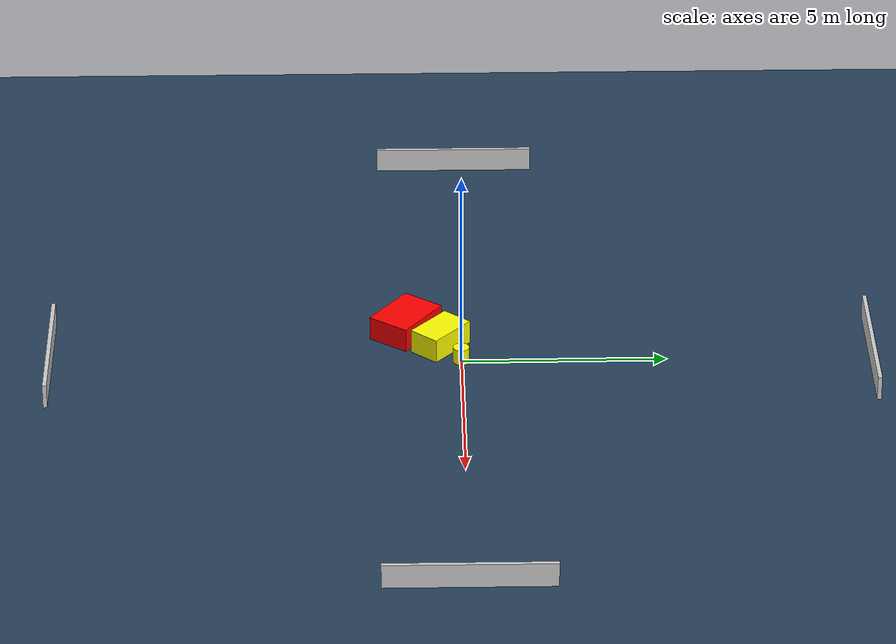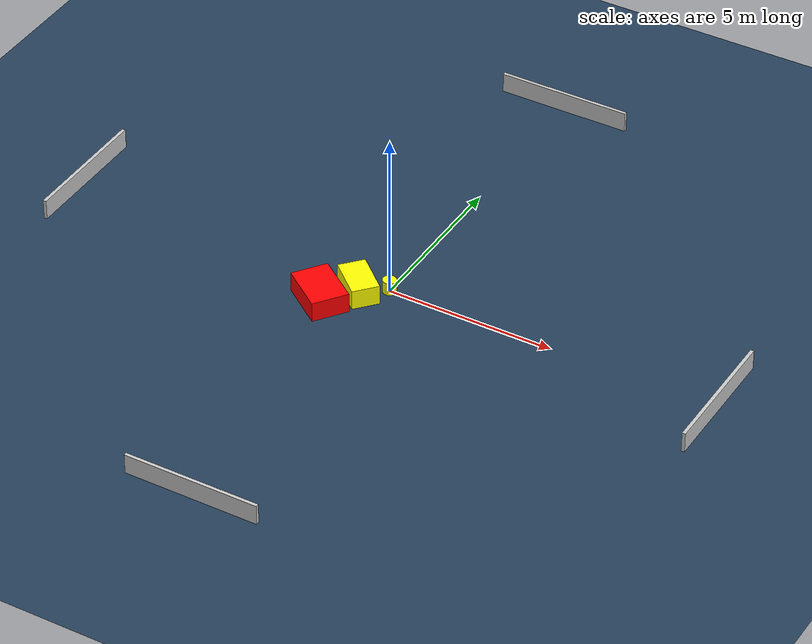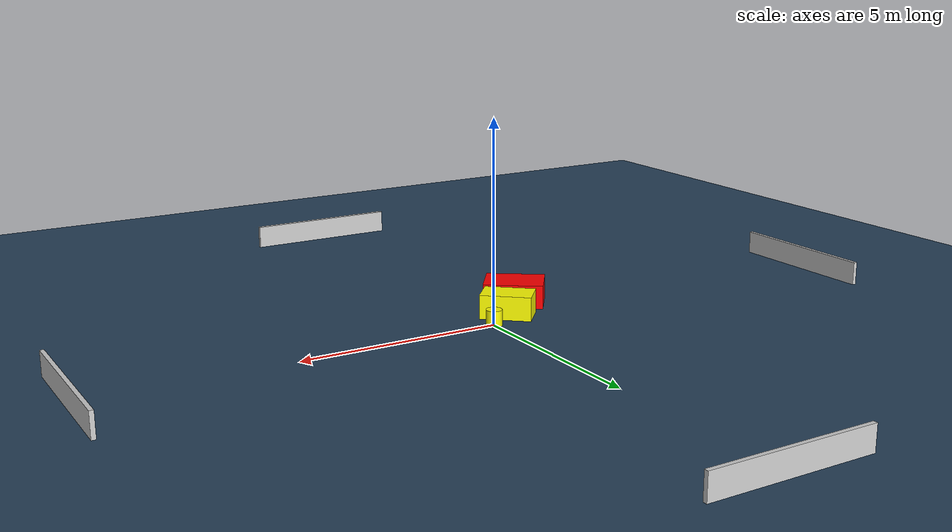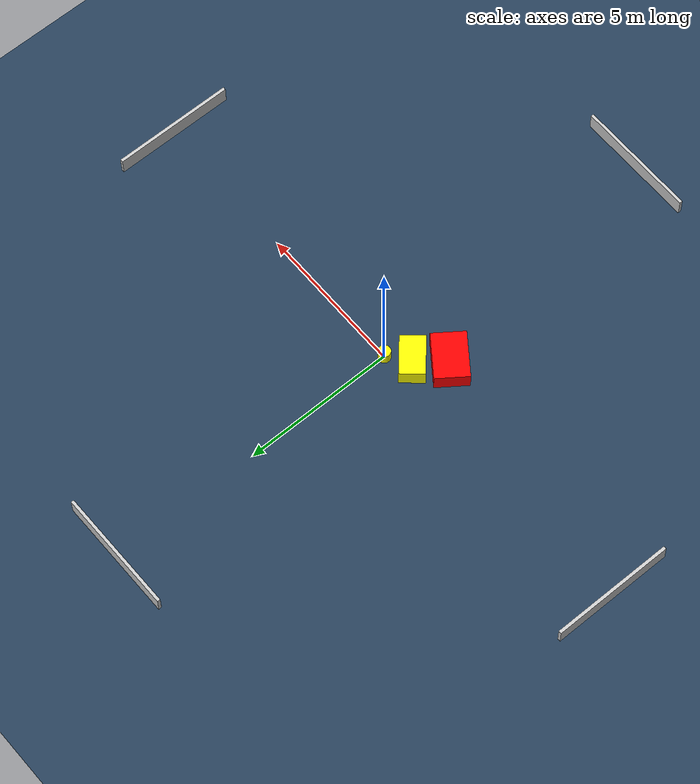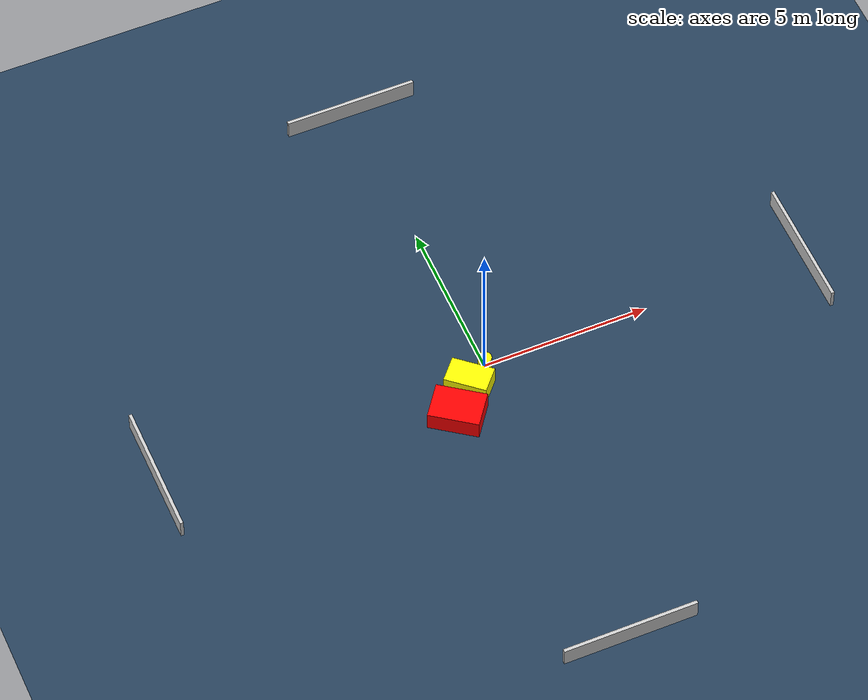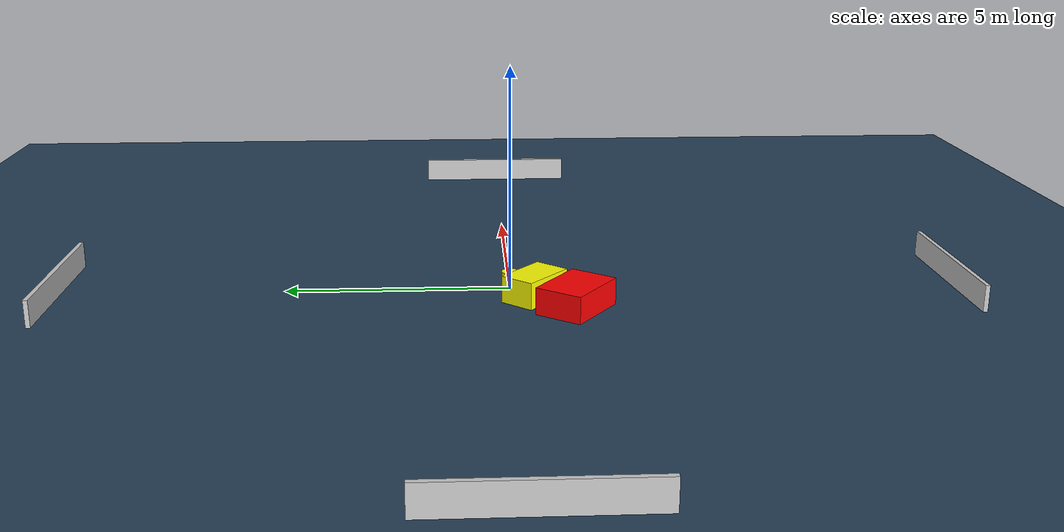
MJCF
<?xml version="1.0" ?>
<mujoco model="generated_environment">
  <option timestep="0.01" integrator="RK4" cone="elliptic"/>
  <default>
    <geom density="1"/>
  </default>
  <asset>
    <texture builtin="gradient" height="3072" name="skybox" rgb1="0.3 0.5 0.7" rgb2="0 0 0" type="skybox" width="512"/>
    <texture builtin="checker" height="300" name="groundplane" rgb1="0.2 0.3 0.4" rgb2="0.1 0.2 0.3" type="2d" width="300"/>
    <material name="groundplane" reflectance="0.2" texrepeat="5 5" texture="groundplane"/>
  </asset>
  <worldbody>
    <light dir="0 0 -1" directional="true" pos="0 0 1.5"/>
    <geom condim="3" friction="0.5 0.005 0.001" material="groundplane" name="floor" pos="0 0 0" size="0 0 0.05" type="plane"/>
    <body name="walls">
      <geom name="wall_1" condim="4" pos="-10.0 0.0 0.3" rgba="0.800000011920929 0.800000011920929 0.800000011920929 1.0" size="0.05 2.0 0.3" type="box"/>
      <geom name="wall_2" condim="4" pos="10.0 0.0 0.3" rgba="0.800000011920929 0.800000011920929 0.800000011920929 1.0" size="0.05 2.0 0.3" type="box"/>
      <geom name="wall_3" condim="4" pos="0.0 -10.0 0.3" rgba="0.800000011920929 0.800000011920929 0.800000011920929 1.0" size="2.0 0.05 0.3" type="box"/>
      <geom name="wall_4" condim="4" pos="0.0 10.0 0.3" rgba="0.800000011920929 0.800000011920929 0.800000011920929 1.0" size="2.0 0.05 0.3" type="box"/>
    </body>
    <body name="robot">
      <joint name="joint_x" type="slide" pos="0 0 0" axis="1 0 0"/>
      <joint name="joint_y" type="slide" pos="0 0 0" axis="0 1 0"/>
      <geom name="robot" type="cylinder" pos="0.0 0.0 0.2" size="0.2 0.2 0.0" mass="5.0" friction="1.0 0.005 0.0001" condim="4" rgba="1.0 1.0 0.0 1.0"/>
    </body>
    <body name="obstacle_1_movable">
      <geom name="obstacle_1_movable" condim="4" pos="-0.6942518477553038 -0.49078912304746586 0.3" euler="0 0 138.73215206730217" friction="0.0 0.005 0.001" rgba="1.0 1.0 0.0 1.0" size="0.6374874652352958 0.4025130121175574 0.3" type="box" mass="0.1"/>
      <joint type="free"/>
    </body>
    <body name="obstacle_2_static">
      <geom name="obstacle_2_static" condim="4" pos="-1.416564650373798 -1.335376570105518 0.3" euler="0 0 143.8133274332388" friction="0.0 0.005 0.001" rgba="1.0 0.0 0.0 1.0" size="0.7505255073407571 0.5460173276216826 0.3" type="box"/>
    </body>
  </worldbody>
  <actuator>
    <motor name="actuator_x" joint="joint_x" gear="1" ctrlrange="-1 1"/>
    <motor name="actuator_y" joint="joint_y" gear="1" ctrlrange="-1 1"/>
  </actuator>
</mujoco>
